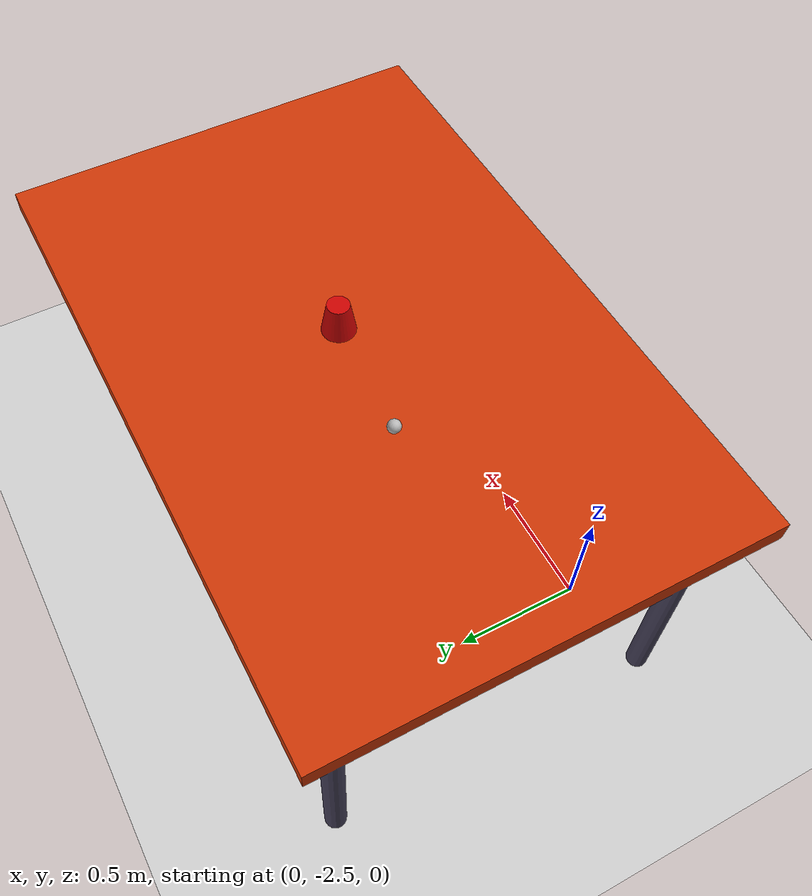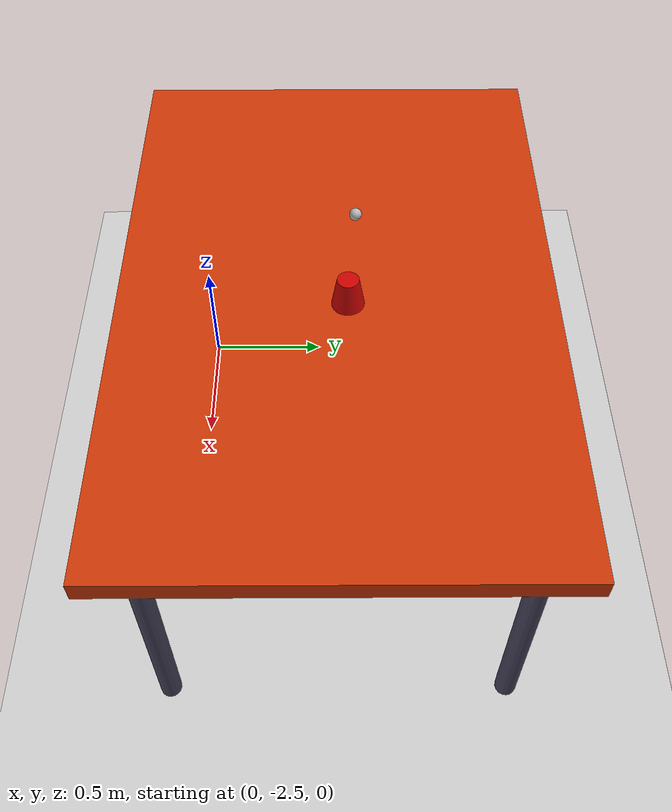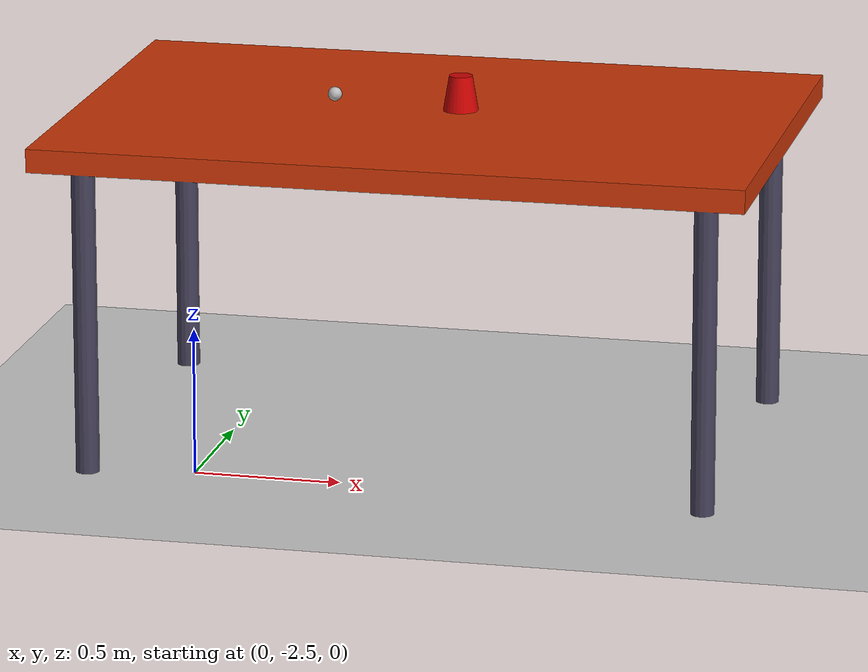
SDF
<sdf version='1.10'>
  <world name='shapes'>
    <scene>
      <ambient>1 1 1 1</ambient>
      <background>0.800000012 0.800000012 0.800000012 1</background>
      <shadows>true</shadows>
    </scene>
    <gravity>0 0 -9.8000000000000007</gravity>
    <magnetic_field>5.5644999999999998e-06 2.2875799999999999e-05 -4.2388400000000002e-05</magnetic_field>
    <atmosphere type='adiabatic'/>
    <physics type='ode'>
      <max_step_size>0.001</max_step_size>
      <real_time_factor>1</real_time_factor>
      <real_time_update_rate>1000</real_time_update_rate>
    </physics>
    <model name='ground_plane'>
      <static>true</static>
      <link name='link'>
        <collision name='collision'>
          <geometry>
            <plane>
              <normal>0 0 1</normal>
              <size>100 100</size>
            </plane>
          </geometry>
          <surface>
            <friction>
              <ode/>
            </friction>
            <bounce/>
            <contact/>
          </surface>
        </collision>
        <visual name='visual'>
          <geometry>
            <plane>
              <normal>0 0 1</normal>
              <size>100 100</size>
            </plane>
          </geometry>
          <material>
            <ambient>0.800000012 0.800000012 0.800000012 1</ambient>
            <diffuse>0.800000012 0.800000012 0.800000012 1</diffuse>
            <specular>0.800000012 0.800000012 0.800000012 1</specular>
          </material>
        </visual>
        <pose>0 0 0 0 0 0</pose>
        <inertial>
          <pose>0 0 0 0 0 0</pose>
          <mass>1</mass>
          <inertia>
            <ixx>1</ixx>
            <ixy>0</ixy>
            <ixz>0</ixz>
            <iyy>1</iyy>
            <iyz>0</iyz>
            <izz>1</izz>
          </inertia>
        </inertial>
        <enable_wind>false</enable_wind>
      </link>
      <pose>0 0 0 0 0 0</pose>
      <self_collide>false</self_collide>
    </model>
    <model name='Pelota'>
      <static>false</static>
      <link name='link'>
        <collision name='collision'>
          <geometry>
            <mesh>
              <uri>file://local_models/pelota/model://pelota/meshes/collision/pelota.stl</uri>
            </mesh>
          </geometry>
        </collision>
        <visual name='visual'>
          <geometry>
            <mesh>
              <uri>file://local_models/pelota/model://pelota/meshes/visual/pelota.dae</uri>
            </mesh>
          </geometry>
        </visual>
        <pose>0 0 0 0 0 0</pose>
        <inertial>
          <pose>0 0 0 0 0 0</pose>
          <mass>1</mass>
          <inertia>
            <ixx>1</ixx>
            <ixy>0</ixy>
            <ixz>0</ixz>
            <iyy>1</iyy>
            <iyz>0</iyz>
            <izz>1</izz>
          </inertia>
        </inertial>
        <enable_wind>false</enable_wind>
      </link>
      <pose>0.32770899999999997 -1.8412200000000001 1.17059 1.7910999999999999e-15 -2.4450299999999999e-14 7.2848199999999996e-23</pose>
      <self_collide>false</self_collide>
    </model>
    <model name='Mesa'>
      <static>true</static>
      <link name='link'>
        <collision name='collision'>
          <geometry>
            <mesh>
              <uri>file://local_models/mesa/model://mesa/meshes/collision/mesa.stl</uri>
            </mesh>
          </geometry>
        </collision>
        <visual name='visual'>
          <geometry>
            <mesh>
              <uri>file://local_models/mesa/model://mesa/meshes/visual/mesa.dae</uri>
            </mesh>
          </geometry>
        </visual>
        <pose>0 0 0 0 0 0</pose>
        <inertial>
          <pose>0 0 0 0 0 0</pose>
          <mass>1</mass>
          <inertia>
            <ixx>1</ixx>
            <ixy>0</ixy>
            <ixz>0</ixz>
            <iyy>1</iyy>
            <iyz>0</iyz>
            <izz>1</izz>
          </inertia>
        </inertial>
        <enable_wind>false</enable_wind>
      </link>
      <pose>0.69096999999999997 -1.91388 0 0 0 0</pose>
      <self_collide>false</self_collide>
    </model>
    <model name='Vaso'>
      <static>false</static>
      <link name='link'>
        <collision name='collision'>
          <geometry>
            <mesh>
              <uri>file://local_models/vaso/model://vaso/meshes/collision/vaso.stl</uri>
            </mesh>
          </geometry>
        </collision>
        <visual name='visual'>
          <geometry>
            <mesh>
              <uri>file://local_models/vaso/model://vaso/meshes/visual/vaso.dae</uri>
            </mesh>
          </geometry>
        </visual>
        <pose>0 0 0 0 0 0</pose>
        <inertial>
          <pose>0 0 0 0 0 0</pose>
          <mass>1</mass>
          <inertia>
            <ixx>1</ixx>
            <ixy>0</ixy>
            <ixz>0</ixz>
            <iyy>1</iyy>
            <iyz>0</iyz>
            <izz>1</izz>
          </inertia>
        </inertial>
        <enable_wind>false</enable_wind>
      </link>
      <pose>0.77360898258859068 -1.8751606754995935 1.2072545860313686 -3.1037869852655543e-07 4.2621930643606786e-10 -2.5783599036226461e-15</pose>
      <self_collide>false</self_collide>
    </model>
    <light name='sun' type='directional'>
      <pose>0 0 10 0 0 0</pose>
      <cast_shadows>true</cast_shadows>
      <intensity>1</intensity>
      <direction>-0.5 0.10000000000000001 -0.90000000000000002</direction>
      <diffuse>0.800000012 0.800000012 0.800000012 1</diffuse>
      <specular>0.200000003 0.200000003 0.200000003 1</specular>
      <attenuation>
        <range>1000</range>
        <linear>0.0099999997764825821</linear>
        <constant>0.89999997615814209</constant>
        <quadratic>0.0010000000474974513</quadratic>
      </attenuation>
      <spot>
        <inner_angle>0</inner_angle>
        <outer_angle>0</outer_angle>
        <falloff>0</falloff>
      </spot>
    </light>
  </world>
</sdf>
